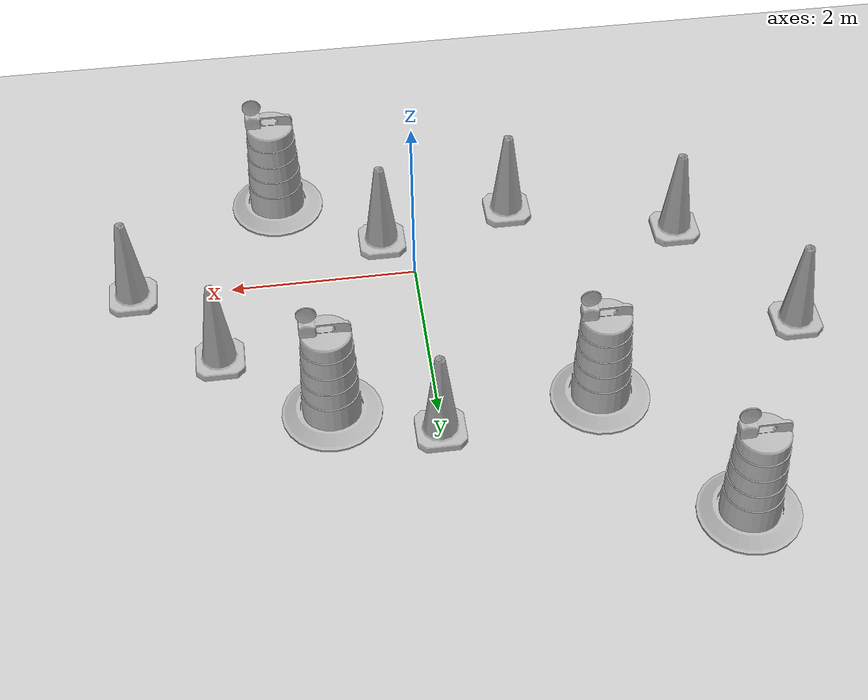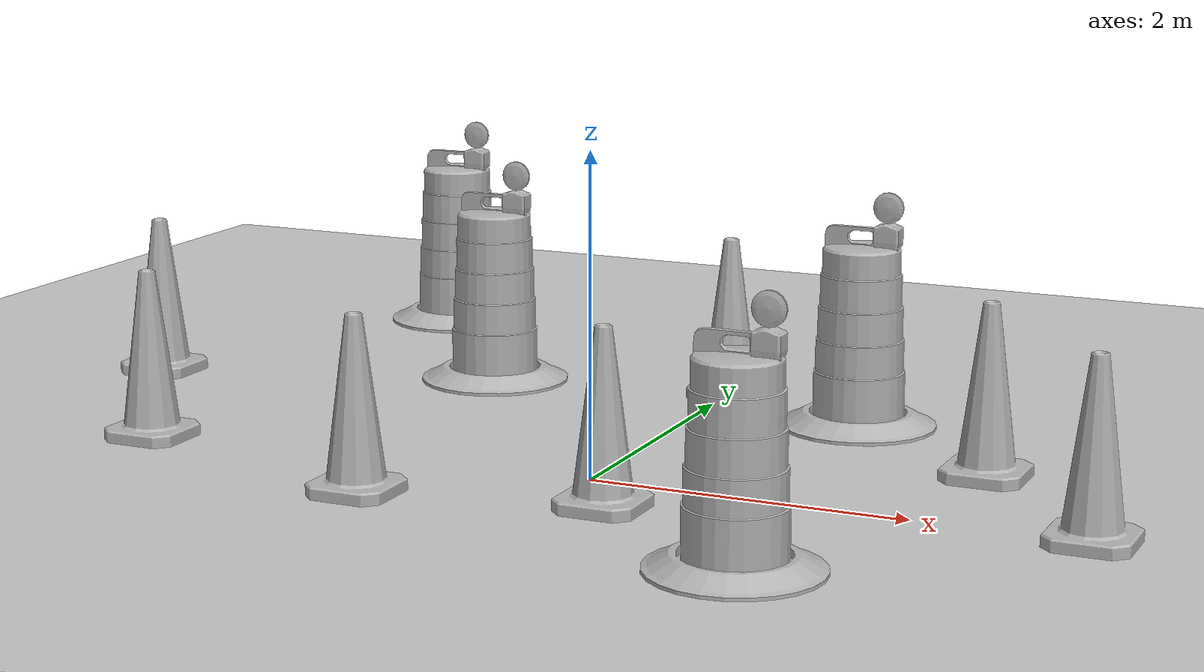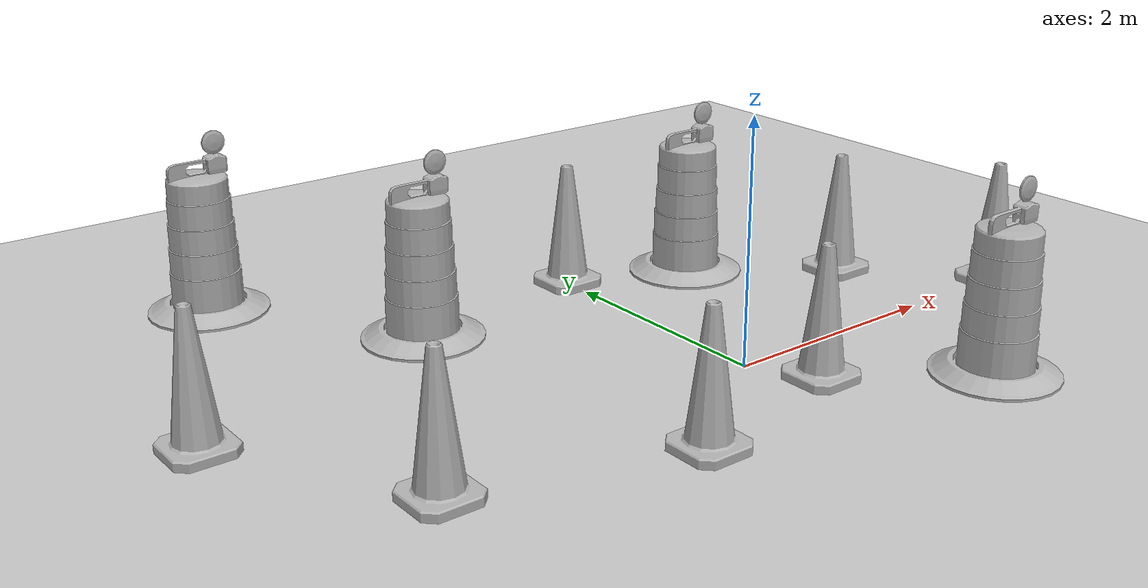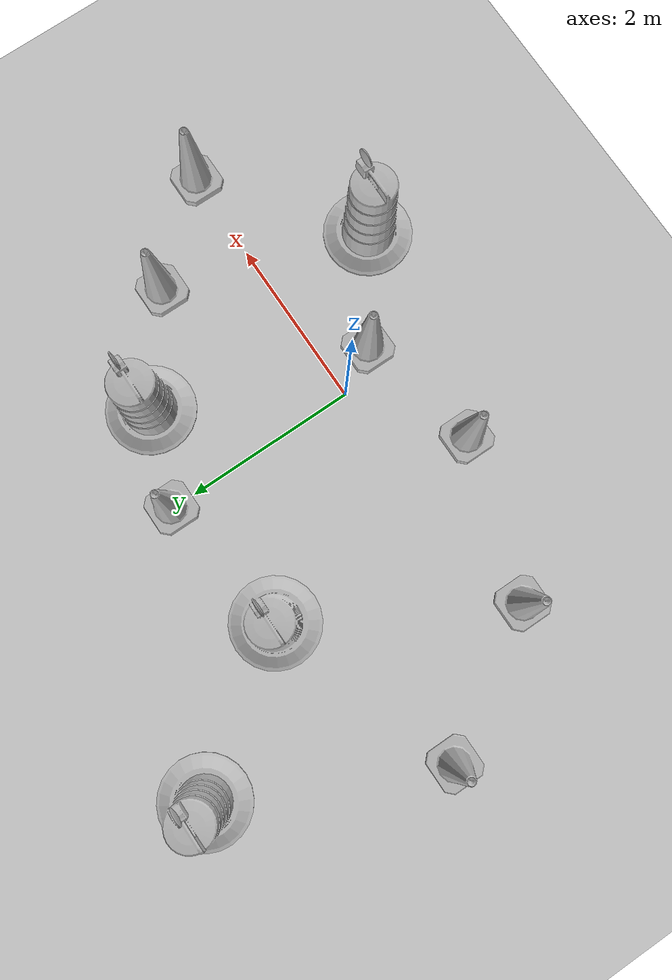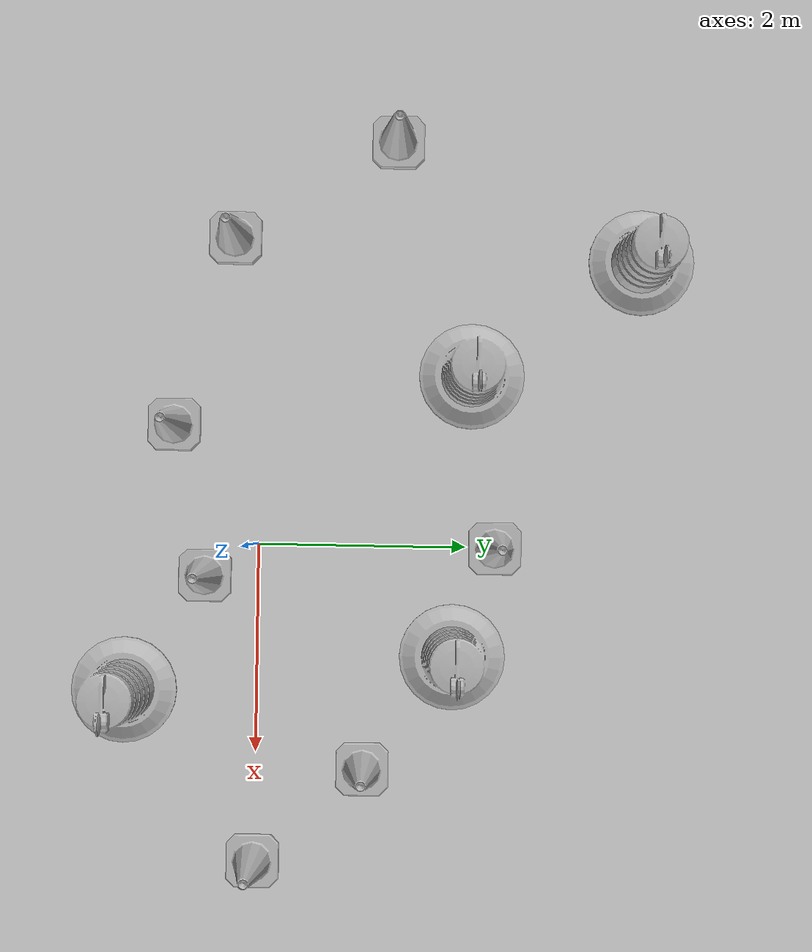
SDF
<sdf version="1.7">
 <world name="default">
  <light name="sun" type="directional">
   <pose>0 0 10 0 -0 0</pose>
   <diffuse>0.8 0.8 0.8 1</diffuse>
   <specular>0.2 0.2 0.2 1</specular>
   <attenuation>
    <range>1000</range>
    <constant>0.9</constant>
    <linear>0.01</linear>
    <quadratic>0.001</quadratic>
   </attenuation>
   <direction>-0.5 0.1 -0.9</direction>
   <spot><inner_angle>0</inner_angle><outer_angle>0</outer_angle><falloff>0</falloff></spot>
  </light>
  <model name="ground_plane">
   <static>1</static>
   <link name="link">
    <collision name="collision">
     <geometry><plane><normal>0 0 1</normal><size>100 100</size></plane></geometry>
     <surface>
      <contact><collide_bitmask>65535</collide_bitmask></contact>
      <friction><ode><mu>100</mu><mu2>50</mu2></ode></friction>
     </surface>
    </collision>
    <visual name="visual">
     <cast_shadows>0</cast_shadows>
     <geometry><plane><normal>0 0 1</normal><size>100 100</size></plane></geometry>
     <material>
      <script><uri>file://media/materials/scripts/gazebo.material</uri><name>Gazebo/Grey</name></script>
     </material>
    </visual>
   </link>
  </model>
  <gravity>0 0 -9.8</gravity>
  <magnetic_field>6e-06 2.3e-05 -4.2e-05</magnetic_field>
  <atmosphere type="adiabatic"/>
  <physics type="ode">
   <max_step_size>0.001</max_step_size>
   <real_time_factor>1</real_time_factor>
   <real_time_update_rate>1000</real_time_update_rate>
  </physics>
  <scene><ambient>0.4 0.4 0.4 1</ambient><background>0.7 0.7 0.7 1</background><shadows>1</shadows></scene>
  <spherical_coordinates>
   <surface_model>EARTH_WGS84</surface_model>
   <latitude_deg>0</latitude_deg>
   <longitude_deg>0</longitude_deg>
   <elevation>0</elevation>
   <heading_deg>0</heading_deg>
  </spherical_coordinates>
  <model name="Construction Barrel">
   <link name="link">
    <inertial>
     <pose>0 0 0.4 0 -0 0</pose>
     <mass>500</mass>
     <inertia><ixx>51.2096</ixx><iyy>51.2096</iyy><izz>25</izz><ixy>0</ixy><ixz>0</ixz><iyz>0</iyz></inertia>
    </inertial>
    <collision name="collision">
     <geometry><mesh><uri>model://construction_barrel/meshes/construction_barrel.dae</uri></mesh></geometry>
    </collision>
    <visual name="visual">
     <geometry><mesh><uri>model://construction_barrel/meshes/construction_barrel.dae</uri></mesh></geometry>
    </visual>
   </link>
   <pose>1.06236 1.88173 -0 0 0 -3.5e-05</pose>
  </model>
  <model name="Construction Barrel_0">
   <link name="link">
    <inertial>
     <pose>0 0 0.4 0 -0 0</pose>
     <mass>500</mass>
     <inertia><ixx>51.2096</ixx><iyy>51.2096</iyy><izz>25</izz><ixy>0</ixy><ixz>0</ixz><iyz>0</iyz></inertia>
    </inertial>
    <collision name="collision">
     <geometry><mesh><uri>model://construction_barrel/meshes/construction_barrel.dae</uri></mesh></geometry>
    </collision>
    <visual name="visual">
     <geometry><mesh><uri>model://construction_barrel/meshes/construction_barrel.dae</uri></mesh></geometry>
    </visual>
   </link>
   <pose>-1.6521 2.03487 -0 1e-06 -1e-06 -4.1e-05</pose>
  </model>
  <model name="Construction Cone">
   <link name="link">
    <collision name="collision">
     <geometry>
      <mesh><scale>10 10 10</scale><uri>model://construction_cone/meshes/construction_cone.dae</uri></mesh>
     </geometry>
    </collision>
    <visual name="visual">
     <geometry>
      <mesh><scale>10 10 10</scale><uri>model://construction_cone/meshes/construction_cone.dae</uri></mesh>
     </geometry>
    </visual>
    <inertial>
     <inertia><ixx>1</ixx><ixy>0</ixy><ixz>0</ixz><iyy>1</iyy><iyz>0</iyz><izz>1</izz></inertia>
     <mass>1</mass>
    </inertial>
   </link>
   <pose>-1.14191 -0.833961 -1e-05 -1e-06 0 0</pose>
  </model>
  <model name="Construction Cone_0">
   <link name="link">
    <collision name="collision">
     <geometry>
      <mesh><scale>10 10 10</scale><uri>model://construction_cone/meshes/construction_cone.dae</uri></mesh>
     </geometry>
    </collision>
    <visual name="visual">
     <geometry>
      <mesh><scale>10 10 10</scale><uri>model://construction_cone/meshes/construction_cone.dae</uri></mesh>
     </geometry>
    </visual>
    <inertial>
     <inertia><ixx>1</ixx><ixy>0</ixy><ixz>0</ixz><iyy>1</iyy><iyz>0</iyz><izz>1</izz></inertia>
     <mass>1</mass>
    </inertial>
   </link>
   <pose>2.15432 1.03236 0 -0 -0 -0</pose>
  </model>
  <model name="Construction Cone_1">
   <link name="link">
    <collision name="collision">
     <geometry>
      <mesh><scale>10 10 10</scale><uri>model://construction_cone/meshes/construction_cone.dae</uri></mesh>
     </geometry>
    </collision>
    <visual name="visual">
     <geometry>
      <mesh><scale>10 10 10</scale><uri>model://construction_cone/meshes/construction_cone.dae</uri></mesh>
     </geometry>
    </visual>
    <inertial>
     <inertia><ixx>1</ixx><ixy>0</ixy><ixz>0</ixz><iyy>1</iyy><iyz>0</iyz><izz>1</izz></inertia>
     <mass>1</mass>
    </inertial>
   </link>
   <pose>0.310928 -0.512711 -0 0 -1e-06 0</pose>
  </model>
  <model name="Construction Cone_2">
   <link name="link">
    <collision name="collision">
     <geometry>
      <mesh><scale>10 10 10</scale><uri>model://construction_cone/meshes/construction_cone.dae</uri></mesh>
     </geometry>
    </collision>
    <visual name="visual">
     <geometry>
      <mesh><scale>10 10 10</scale><uri>model://construction_cone/meshes/construction_cone.dae</uri></mesh>
     </geometry>
    </visual>
    <inertial>
     <inertia><ixx>1</ixx><ixy>0</ixy><ixz>0</ixz><iyy>1</iyy><iyz>0</iyz><izz>1</izz></inertia>
     <mass>1</mass>
    </inertial>
   </link>
   <pose>-2.95788 -0.272181 -0 0 -0 0</pose>
  </model>
  <model name="Construction Barrel_1">
   <link name="link">
    <inertial>
     <pose>0 0 0.4 0 -0 0</pose>
     <mass>500</mass>
     <inertia><ixx>51.2096</ixx><iyy>51.2096</iyy><izz>25</izz><ixy>0</ixy><ixz>0</ixz><iyz>0</iyz></inertia>
    </inertial>
    <collision name="collision">
     <geometry><mesh><uri>model://construction_barrel/meshes/construction_barrel.dae</uri></mesh></geometry>
    </collision>
    <visual name="visual">
     <geometry><mesh><uri>model://construction_barrel/meshes/construction_barrel.dae</uri></mesh></geometry>
    </visual>
   </link>
   <pose>-2.77986 3.6609 -0 0 -0 -4.1e-05</pose>
  </model>
  <model name="Construction Barrel_2">
   <link name="link">
    <inertial>
     <pose>0 0 0.4 0 -0 0</pose>
     <mass>500</mass>
     <inertia><ixx>51.2096</ixx><iyy>51.2096</iyy><izz>25</izz><ixy>0</ixy><ixz>0</ixz><iyz>0</iyz></inertia>
    </inertial>
    <collision name="collision">
     <geometry><mesh><uri>model://construction_barrel/meshes/construction_barrel.dae</uri></mesh></geometry>
    </collision>
    <visual name="visual">
     <geometry><mesh><uri>model://construction_barrel/meshes/construction_barrel.dae</uri></mesh></geometry>
    </visual>
   </link>
   <pose>1.42441 -1.27779 0 0 0 -2.7e-05</pose>
  </model>
  <model name="Construction Cone_3">
   <link name="link">
    <collision name="collision">
     <geometry>
      <mesh><scale>10 10 10</scale><uri>model://construction_cone/meshes/construction_cone.dae</uri></mesh>
     </geometry>
    </collision>
    <visual name="visual">
     <geometry>
      <mesh><scale>10 10 10</scale><uri>model://construction_cone/meshes/construction_cone.dae</uri></mesh>
     </geometry>
    </visual>
    <inertial>
     <inertia><ixx>1</ixx><ixy>0</ixy><ixz>0</ixz><iyy>1</iyy><iyz>0</iyz><izz>1</izz></inertia>
     <mass>1</mass>
    </inertial>
   </link>
   <pose>-3.91077 1.29105 -0 0 -0 0</pose>
  </model>
  <model name="Construction Cone_4">
   <link name="link">
    <collision name="collision">
     <geometry>
      <mesh><scale>10 10 10</scale><uri>model://construction_cone/meshes/construction_cone.dae</uri></mesh>
     </geometry>
    </collision>
    <visual name="visual">
     <geometry>
      <mesh><scale>10 10 10</scale><uri>model://construction_cone/meshes/construction_cone.dae</uri></mesh>
     </geometry>
    </visual>
    <inertial>
     <inertia><ixx>1</ixx><ixy>0</ixy><ixz>0</ixz><iyy>1</iyy><iyz>0</iyz><izz>1</izz></inertia>
     <mass>1</mass>
    </inertial>
   </link>
   <pose>0.01141 2.28008 -0 0 -1e-06 0</pose>
  </model>
  <model name="Construction Cone_5">
   <link name="link">
    <collision name="collision">
     <geometry>
      <mesh><scale>10 10 10</scale><uri>model://construction_cone/meshes/construction_cone.dae</uri></mesh>
     </geometry>
    </collision>
    <visual name="visual">
     <geometry>
      <mesh><scale>10 10 10</scale><uri>model://construction_cone/meshes/construction_cone.dae</uri></mesh>
     </geometry>
    </visual>
    <inertial>
     <inertia><ixx>1</ixx><ixy>0</ixy><ixz>0</ixz><iyy>1</iyy><iyz>0</iyz><izz>1</izz></inertia>
     <mass>1</mass>
    </inertial>
   </link>
   <pose>3.04846 -0.008767 -0 0 -0 0</pose>
  </model>
 </world>
</sdf>
